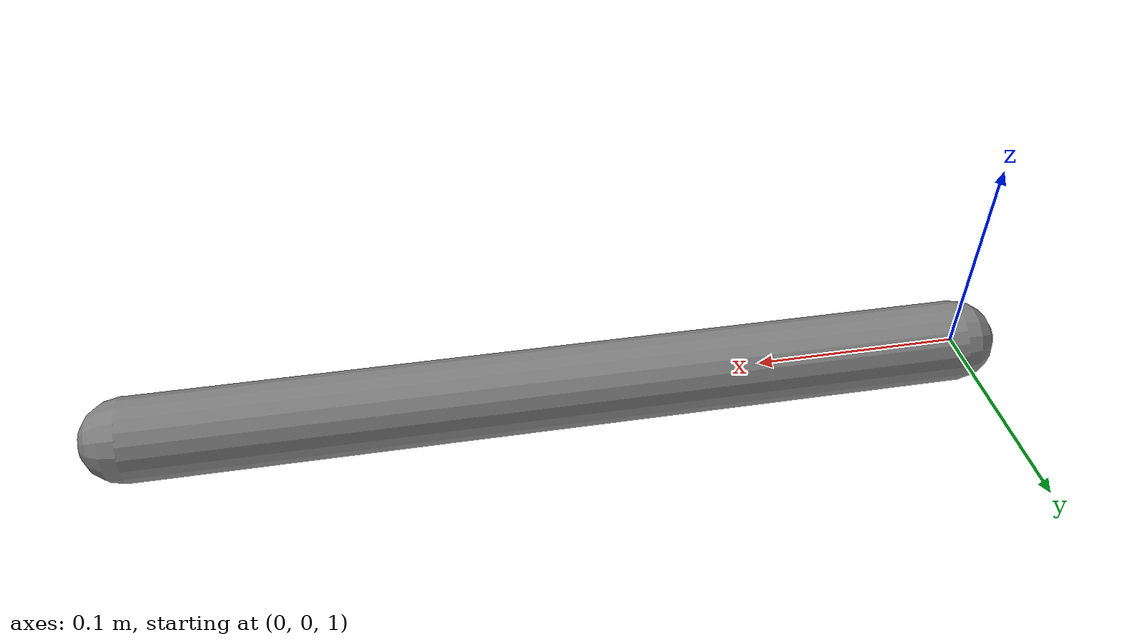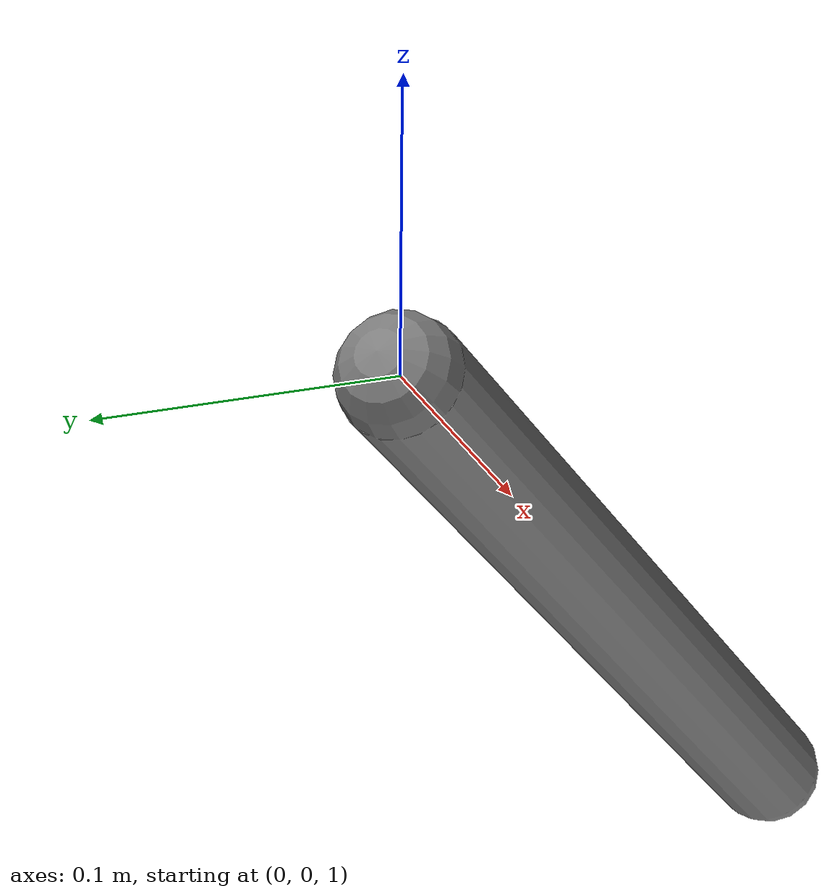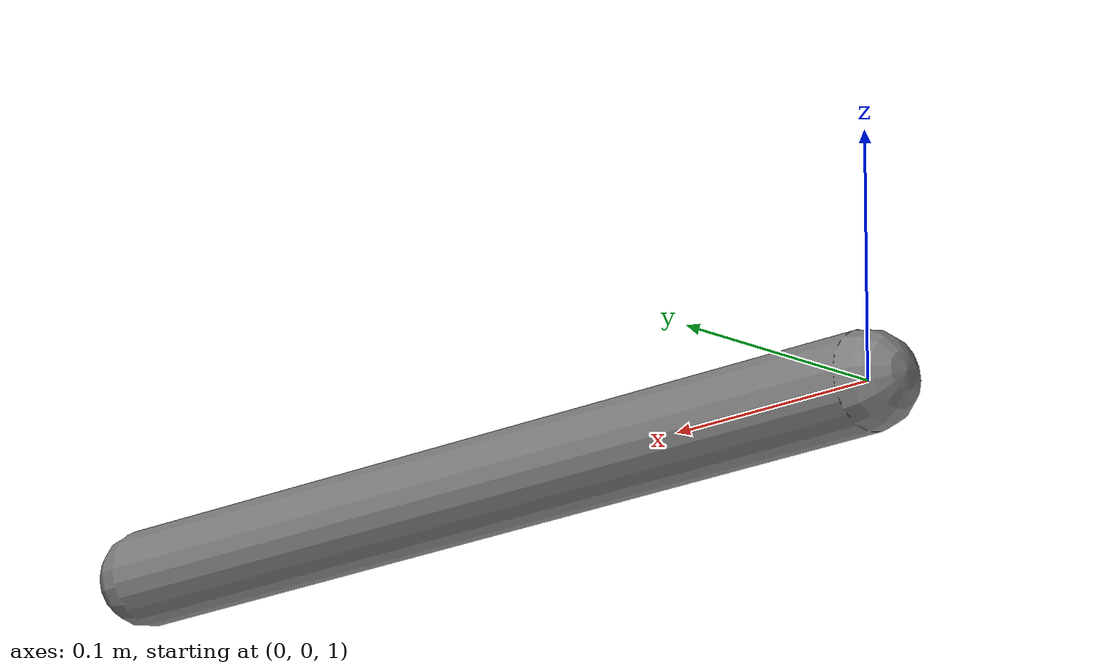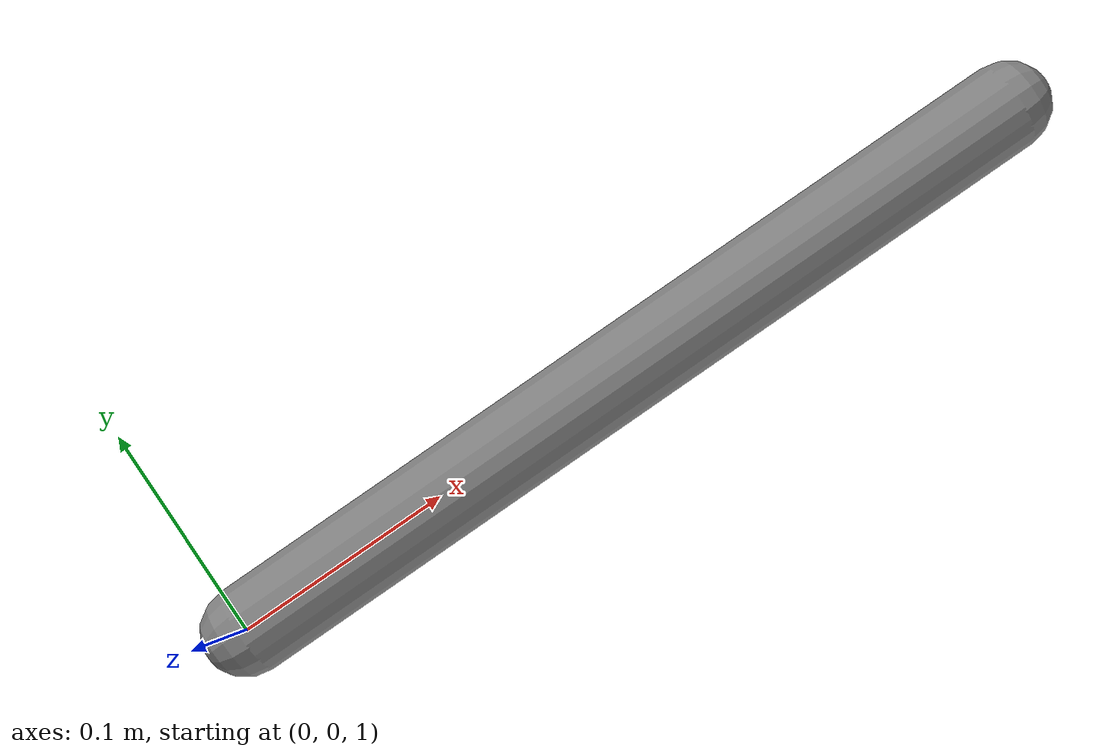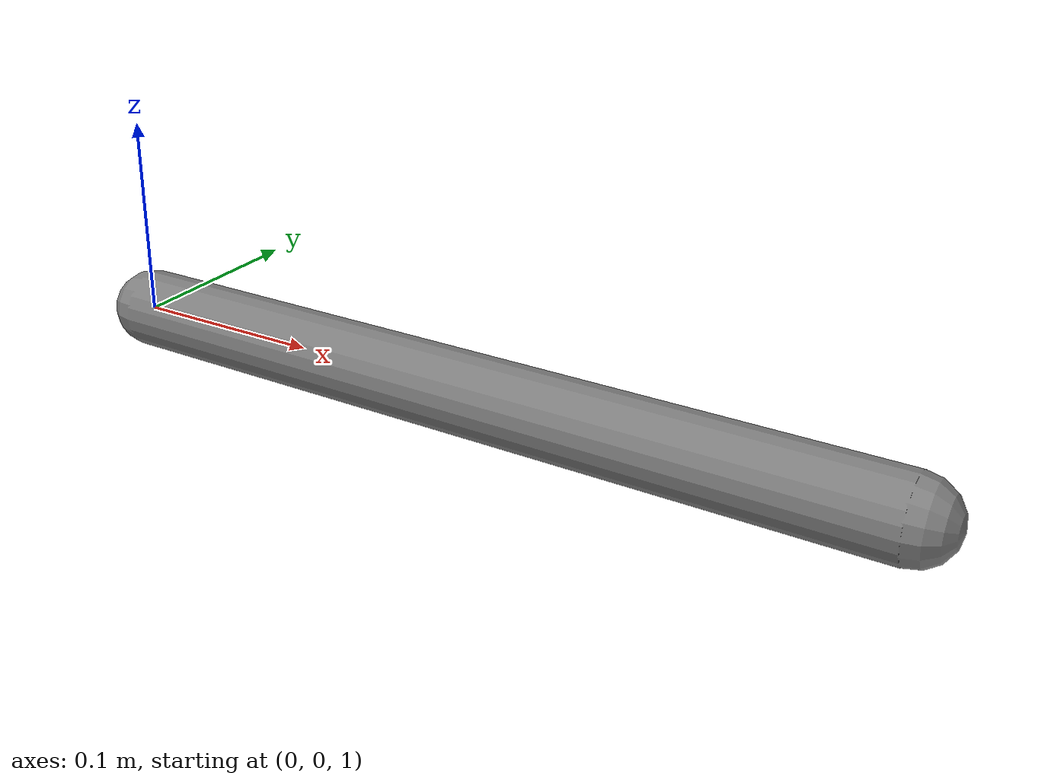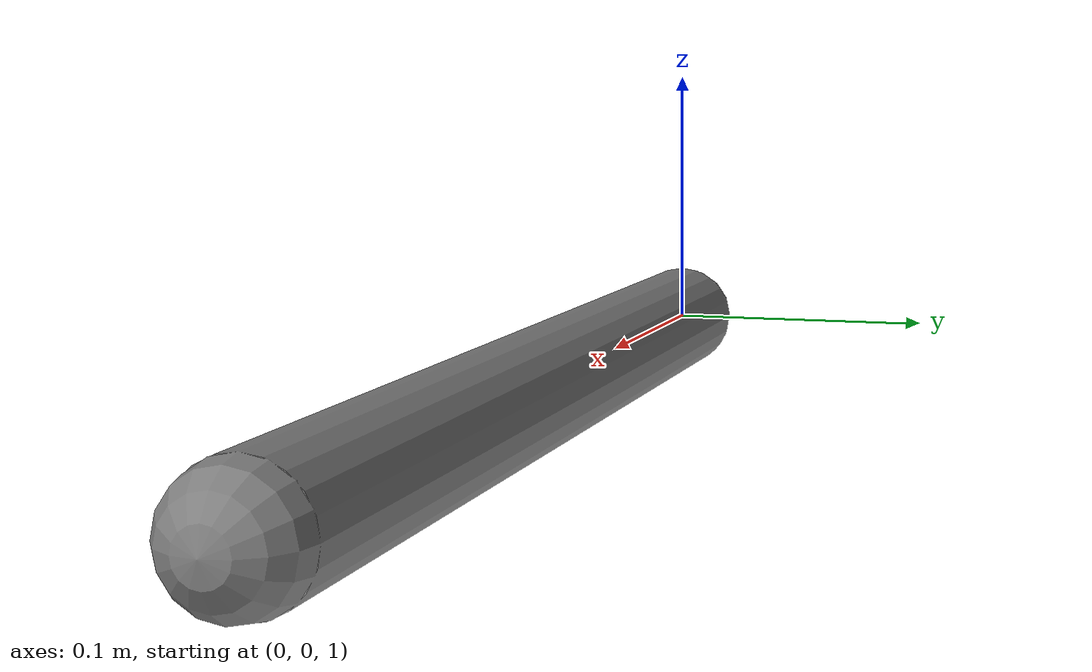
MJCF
<!-- Canonical parity fixture: 1-DOF position-actuated pendulum.
     Used by test_parity.py; run by hand via the "parity" subcommand of
     newton_worker with this file as the model. -->
<mujoco model="test_pendulum">
  <option timestep="0.002" gravity="0 0 -9.81"/>
  <worldbody>
    <body name="pole" pos="0 0 1">
      <joint name="hinge" type="hinge" axis="0 1 0" damping="0.5"/>
      <geom name="rod" type="capsule" fromto="0 0 0  0.4 0 0" size="0.02" density="1000"/>
    </body>
  </worldbody>
  <actuator>
    <position name="hinge_pos" joint="hinge" kp="60" kv="8" ctrlrange="-1.5 1.5"/>
  </actuator>
</mujoco>
